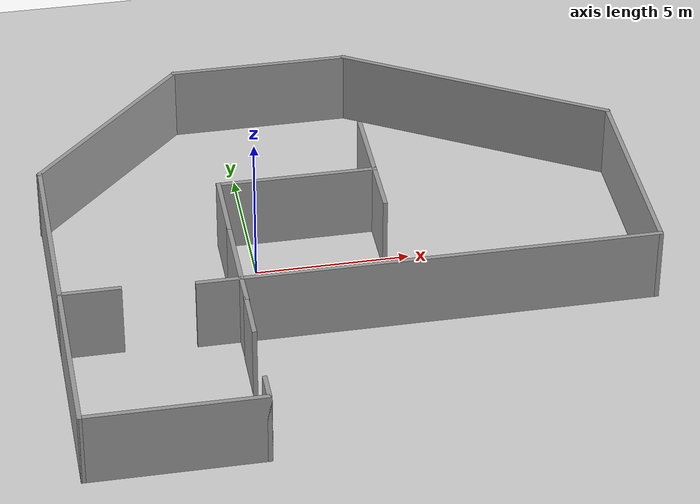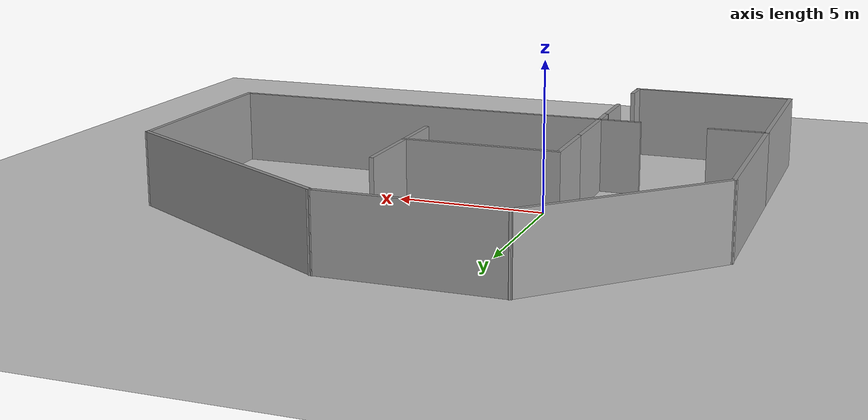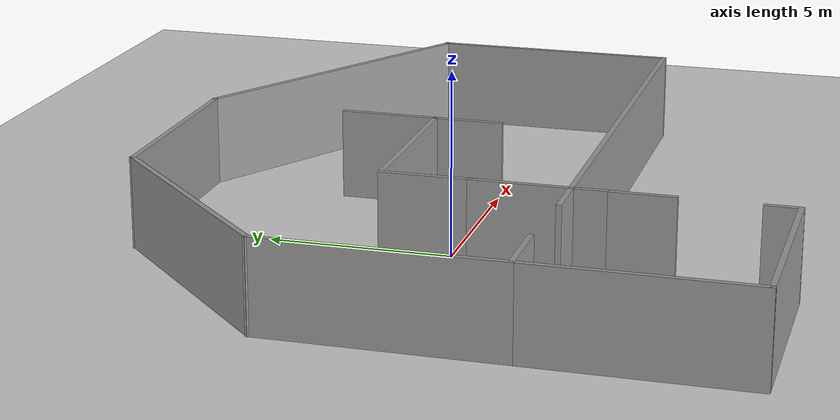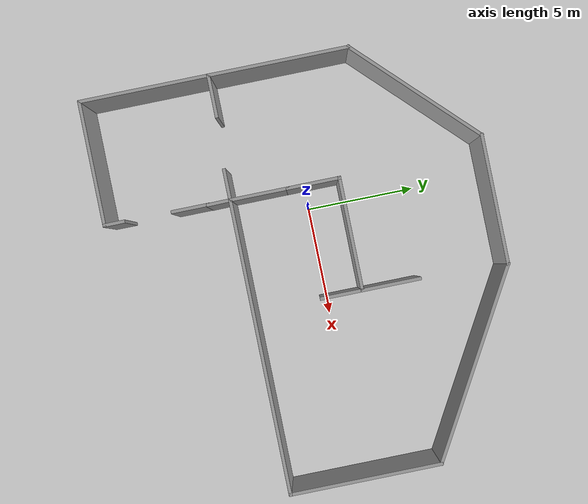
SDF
<sdf version='1.6'>
  <world name='default'>
        <plugin name='ardupilot_sitl_gazebo_plugin' filename='libardupilot_sitl_gazebo_plugin_rover.so'>
      <UAV_MODEL>rover</UAV_MODEL>
    </plugin>
    <light name='sun' type='directional'>
      <cast_shadows>1</cast_shadows>
      <pose frame=''>0 0 10 0 -0 0</pose>
      <diffuse>0.8 0.8 0.8 1</diffuse>
      <specular>0.2 0.2 0.2 1</specular>
      <attenuation>
        <range>1000</range>
        <constant>0.9</constant>
        <linear>0.01</linear>
        <quadratic>0.001</quadratic>
      </attenuation>
      <direction>-0.5 0.1 -0.9</direction>
    </light>
    <model name='ground_plane'>
      <static>1</static>
      <link name='link'>
        <collision name='collision'>
          <geometry>
            <plane>
              <normal>0 0 1</normal>
              <size>100 100</size>
            </plane>
          </geometry>
          <surface>
            <friction>
              <ode>
                <mu>100</mu>
                <mu2>50</mu2>
              </ode>
              <torsional>
                <ode/>
              </torsional>
            </friction>
            <contact>
              <ode/>
            </contact>
            <bounce/>
          </surface>
          <max_contacts>10</max_contacts>
        </collision>
        <visual name='visual'>
          <cast_shadows>0</cast_shadows>
          <geometry>
            <plane>
              <normal>0 0 1</normal>
              <size>100 100</size>
            </plane>
          </geometry>
          <material>
            <script>
              <uri>file://media/materials/scripts/gazebo.material</uri>
              <name>Gazebo/Grey</name>
            </script>
          </material>
        </visual>
        <self_collide>0</self_collide>
        <kinematic>0</kinematic>
      </link>
    </model>
    <gravity>0 0 -9.8</gravity>
    <magnetic_field>6e-06 2.3e-05 -4.2e-05</magnetic_field>
    <atmosphere type='adiabatic'/>
    <physics name='default_physics' default='0' type='ode'>
      <max_step_size>0.001</max_step_size>
      <real_time_factor>1</real_time_factor>
      <real_time_update_rate>1000</real_time_update_rate>
    </physics>
    <scene>
      <ambient>0.4 0.4 0.4 1</ambient>
      <background>0.7 0.7 0.7 1</background>
      <shadows>1</shadows>
    </scene>
    <spherical_coordinates>
      <surface_model>EARTH_WGS84</surface_model>
      <latitude_deg>0</latitude_deg>
      <longitude_deg>0</longitude_deg>
      <elevation>0</elevation>
      <heading_deg>0</heading_deg>
    </spherical_coordinates>
    <model name='weird_building'>
      <pose frame=''>2.9143 -0.409696 0 0 -0 0</pose>
      <link name='Wall_0'>
        <collision name='Wall_0_Collision'>
          <geometry>
            <box>
              <size>2.75 0.15 2.5</size>
            </box>
          </geometry>
          <pose frame=''>0 0 1.25 0 -0 0</pose>
          <max_contacts>10</max_contacts>
          <surface>
            <contact>
              <ode/>
            </contact>
            <bounce/>
            <friction>
              <torsional>
                <ode/>
              </torsional>
              <ode/>
            </friction>
          </surface>
        </collision>
        <visual name='Wall_0_Visual'>
          <pose frame=''>0 0 1.25 0 -0 0</pose>
          <geometry>
            <box>
              <size>2.75 0.15 2.5</size>
            </box>
          </geometry>
          <material>
            <script>
              <uri>file://media/materials/scripts/gazebo.material</uri>
              <name>Gazebo/Grey</name>
            </script>
            <ambient>1 1 1 1</ambient>
          </material>
          <meta>
            <layer>0</layer>
          </meta>
        </visual>
        <pose frame=''>-3.8643 -1.6303 0 0 -0 1.5708</pose>
        <self_collide>0</self_collide>
        <kinematic>0</kinematic>
      </link>
      <link name='Wall_10'>
        <collision name='Wall_10_Collision'>
          <geometry>
            <box>
              <size>9.5 0.15 2.5</size>
            </box>
          </geometry>
          <pose frame=''>0 0 1.25 0 -0 0</pose>
          <max_contacts>10</max_contacts>
          <surface>
            <contact>
              <ode/>
            </contact>
            <bounce/>
            <friction>
              <torsional>
                <ode/>
              </torsional>
              <ode/>
            </friction>
          </surface>
        </collision>
        <visual name='Wall_10_Visual'>
          <pose frame=''>0 0 1.25 0 -0 0</pose>
          <geometry>
            <box>
              <size>9.5 0.15 2.5</size>
            </box>
          </geometry>
          <material>
            <script>
              <uri>file://media/materials/scripts/gazebo.material</uri>
              <name>Gazebo/Grey</name>
            </script>
            <ambient>1 1 1 1</ambient>
          </material>
          <meta>
            <layer>0</layer>
          </meta>
        </visual>
        <pose frame=''>5.43704 6.2572 0 0 -0 2.61799</pose>
        <self_collide>0</self_collide>
        <kinematic>0</kinematic>
      </link>
      <link name='Wall_11'>
        <collision name='Wall_11_Collision'>
          <geometry>
            <box>
              <size>6 0.15 2.5</size>
            </box>
          </geometry>
          <pose frame=''>0 0 1.25 0 -0 0</pose>
          <max_contacts>10</max_contacts>
          <surface>
            <contact>
              <ode/>
            </contact>
            <bounce/>
            <friction>
              <torsional>
                <ode/>
              </torsional>
              <ode/>
            </friction>
          </surface>
        </collision>
        <visual name='Wall_11_Visual'>
          <pose frame=''>0 0 1.25 0 -0 0</pose>
          <geometry>
            <box>
              <size>6 0.15 2.5</size>
            </box>
          </geometry>
          <material>
            <script>
              <uri>file://media/materials/scripts/gazebo.material</uri>
              <name>Gazebo/Grey</name>
            </script>
            <ambient>1 1 1 1</ambient>
          </material>
          <meta>
            <layer>0</layer>
          </meta>
        </visual>
        <pose frame=''>-1.53663 8.5947 0 0 -0 3.14159</pose>
        <self_collide>0</self_collide>
        <kinematic>0</kinematic>
      </link>
      <link name='Wall_12'>
        <collision name='Wall_12_Collision'>
          <geometry>
            <box>
              <size>7.25 0.15 2.5</size>
            </box>
          </geometry>
          <pose frame=''>0 0 1.25 0 -0 0</pose>
          <max_contacts>10</max_contacts>
          <surface>
            <contact>
              <ode/>
            </contact>
            <bounce/>
            <friction>
              <torsional>
                <ode/>
              </torsional>
              <ode/>
            </friction>
          </surface>
        </collision>
        <visual name='Wall_12_Visual'>
          <pose frame=''>0 0 1.25 0 -0 0</pose>
          <geometry>
            <box>
              <size>7.25 0.15 2.5</size>
            </box>
          </geometry>
          <material>
            <script>
              <uri>file://media/materials/scripts/gazebo.material</uri>
              <name>Gazebo/Grey</name>
            </script>
            <ambient>1 1 1 1</ambient>
          </material>
          <meta>
            <layer>0</layer>
          </meta>
        </visual>
        <pose frame=''>-6.97186 6.08447 0 0 0 -2.35619</pose>
        <self_collide>0</self_collide>
        <kinematic>0</kinematic>
      </link>
      <link name='Wall_15'>
        <collision name='Wall_15_Collision'>
          <geometry>
            <box>
              <size>2.75 0.15 2.5</size>
            </box>
          </geometry>
          <pose frame=''>0 0 1.25 0 -0 0</pose>
          <max_contacts>10</max_contacts>
          <surface>
            <contact>
              <ode/>
            </contact>
            <bounce/>
            <friction>
              <torsional>
                <ode/>
              </torsional>
              <ode/>
            </friction>
          </surface>
        </collision>
        <visual name='Wall_15_Visual'>
          <pose frame=''>0 0 1.25 0 -0 0</pose>
          <geometry>
            <box>
              <size>2.75 0.15 2.5</size>
            </box>
          </geometry>
          <material>
            <script>
              <uri>file://media/materials/scripts/gazebo.material</uri>
              <name>Gazebo/Grey</name>
            </script>
            <ambient>1 1 1 1</ambient>
          </material>
          <meta>
            <layer>0</layer>
          </meta>
        </visual>
        <pose frame=''>1.2357 3.3197 0 0 -0 1.5708</pose>
        <self_collide>0</self_collide>
        <kinematic>0</kinematic>
      </link>
      <link name='Wall_17'>
        <collision name='Wall_17_Collision'>
          <geometry>
            <box>
              <size>6.5 0.15 2.5</size>
            </box>
          </geometry>
          <pose frame=''>0 0 1.25 0 -0 0</pose>
          <max_contacts>10</max_contacts>
          <surface>
            <contact>
              <ode/>
            </contact>
            <bounce/>
            <friction>
              <torsional>
                <ode/>
              </torsional>
              <ode/>
            </friction>
          </surface>
        </collision>
        <visual name='Wall_17_Visual'>
          <pose frame=''>0 0 1.25 0 -0 0</pose>
          <geometry>
            <box>
              <size>6.5 0.15 2.5</size>
            </box>
          </geometry>
          <material>
            <script>
              <uri>file://media/materials/scripts/gazebo.material</uri>
              <name>Gazebo/Grey</name>
            </script>
            <ambient>1 1 1 1</ambient>
          </material>
          <meta>
            <layer>0</layer>
          </meta>
        </visual>
        <pose frame=''>-9.48209 0.399237 0 0 0 -1.5708</pose>
        <self_collide>0</self_collide>
        <kinematic>0</kinematic>
      </link>
      <link name='Wall_19'>
        <collision name='Wall_19_Collision'>
          <geometry>
            <box>
              <size>6 0.15 2.5</size>
            </box>
          </geometry>
          <pose frame=''>0 0 1.25 0 -0 0</pose>
          <max_contacts>10</max_contacts>
          <surface>
            <contact>
              <ode/>
            </contact>
            <bounce/>
            <friction>
              <torsional>
                <ode/>
              </torsional>
              <ode/>
            </friction>
          </surface>
        </collision>
        <visual name='Wall_19_Visual'>
          <pose frame=''>0 0 1.25 0 -0 0</pose>
          <geometry>
            <box>
              <size>6 0.15 2.5</size>
            </box>
          </geometry>
          <material>
            <script>
              <uri>file://media/materials/scripts/gazebo.material</uri>
              <name>Gazebo/Grey</name>
            </script>
            <ambient>1 1 1 1</ambient>
          </material>
          <meta>
            <layer>0</layer>
          </meta>
        </visual>
        <pose frame=''>-9.48209 -5.70076 0 0 0 -1.5708</pose>
        <self_collide>0</self_collide>
        <kinematic>0</kinematic>
      </link>
      <link name='Wall_2'>
        <collision name='Wall_2_Collision'>
          <geometry>
            <box>
              <size>2.5 0.15 2.5</size>
            </box>
          </geometry>
          <pose frame=''>0 0 1.25 0 -0 0</pose>
          <max_contacts>10</max_contacts>
          <surface>
            <contact>
              <ode/>
            </contact>
            <bounce/>
            <friction>
              <torsional>
                <ode/>
              </torsional>
              <ode/>
            </friction>
          </surface>
        </collision>
        <visual name='Wall_2_Visual'>
          <pose frame=''>0 0 1.25 0 -0 0</pose>
          <geometry>
            <box>
              <size>2.5 0.15 2.5</size>
            </box>
          </geometry>
          <material>
            <script>
              <uri>file://media/materials/scripts/gazebo.material</uri>
              <name>Gazebo/Grey</name>
            </script>
            <ambient>1 1 1 1</ambient>
          </material>
          <meta>
            <layer>0</layer>
          </meta>
        </visual>
        <pose frame=''>-3.8643 0.844696 0 0 -0 1.5708</pose>
        <self_collide>0</self_collide>
        <kinematic>0</kinematic>
      </link>
      <link name='Wall_20'>
        <collision name='Wall_20_Collision'>
          <geometry>
            <box>
              <size>5.75 0.15 2.5</size>
            </box>
          </geometry>
          <pose frame=''>0 0 1.25 0 -0 0</pose>
          <max_contacts>10</max_contacts>
          <surface>
            <contact>
              <ode/>
            </contact>
            <bounce/>
            <friction>
              <torsional>
                <ode/>
              </torsional>
              <ode/>
            </friction>
          </surface>
        </collision>
        <visual name='Wall_20_Visual'>
          <pose frame=''>0 0 1.25 0 -0 0</pose>
          <geometry>
            <box>
              <size>5.75 0.15 2.5</size>
            </box>
          </geometry>
          <material>
            <script>
              <uri>file://media/materials/scripts/gazebo.material</uri>
              <name>Gazebo/Grey</name>
            </script>
            <ambient>1 1 1 1</ambient>
          </material>
          <meta>
            <layer>0</layer>
          </meta>
        </visual>
        <pose frame=''>-6.68209 -8.62576 0 0 -0 0</pose>
        <self_collide>0</self_collide>
        <kinematic>0</kinematic>
      </link>
      <link name='Wall_21'>
        <collision name='Wall_21_Collision'>
          <geometry>
            <box>
              <size>1 0.15 2.5</size>
            </box>
          </geometry>
          <pose frame=''>0 0 1.25 0 -0 0</pose>
          <max_contacts>10</max_contacts>
          <surface>
            <contact>
              <ode/>
            </contact>
            <bounce/>
            <friction>
              <torsional>
                <ode/>
              </torsional>
              <ode/>
            </friction>
          </surface>
        </collision>
        <visual name='Wall_21_Visual'>
          <pose frame=''>0 0 1.25 0 -0 0</pose>
          <geometry>
            <box>
              <size>1 0.15 2.5</size>
            </box>
          </geometry>
          <material>
            <script>
              <uri>file://media/materials/scripts/gazebo.material</uri>
              <name>Gazebo/Grey</name>
            </script>
            <ambient>1 1 1 1</ambient>
          </material>
          <meta>
            <layer>0</layer>
          </meta>
        </visual>
        <pose frame=''>-3.88209 -8.20076 0 0 -0 1.5708</pose>
        <self_collide>0</self_collide>
        <kinematic>0</kinematic>
      </link>
      <link name='Wall_23'>
        <collision name='Wall_23_Collision'>
          <geometry>
            <box>
              <size>1.15921 0.15 2.5</size>
            </box>
          </geometry>
          <pose frame=''>0 0 1.25 0 -0 0</pose>
          <max_contacts>10</max_contacts>
          <surface>
            <contact>
              <ode/>
            </contact>
            <bounce/>
            <friction>
              <torsional>
                <ode/>
              </torsional>
              <ode/>
            </friction>
          </surface>
        </collision>
        <visual name='Wall_23_Visual'>
          <pose frame=''>0 0 1.25 0 -0 0</pose>
          <geometry>
            <box>
              <size>1.15921 0.15 2.5</size>
            </box>
          </geometry>
          <material>
            <script>
              <uri>file://media/materials/scripts/gazebo.material</uri>
              <name>Gazebo/Grey</name>
            </script>
            <ambient>1 1 1 1</ambient>
          </material>
          <meta>
            <layer>0</layer>
          </meta>
        </visual>
        <pose frame=''>-3.85669 -3.43468 0 0 0 -1.55572</pose>
        <self_collide>0</self_collide>
        <kinematic>0</kinematic>
      </link>
      <link name='Wall_25'>
        <collision name='Wall_25_Collision'>
          <geometry>
            <box>
              <size>1.5 0.15 2.5</size>
            </box>
          </geometry>
          <pose frame=''>0 0 1.25 0 -0 0</pose>
          <max_contacts>10</max_contacts>
          <surface>
            <contact>
              <ode/>
            </contact>
            <bounce/>
            <friction>
              <torsional>
                <ode/>
              </torsional>
              <ode/>
            </friction>
          </surface>
        </collision>
        <visual name='Wall_25_Visual'>
          <pose frame=''>0 0 1.25 0 -0 0</pose>
          <geometry>
            <box>
              <size>1.5 0.15 2.5</size>
            </box>
          </geometry>
          <material>
            <script>
              <uri>file://media/materials/scripts/gazebo.material</uri>
              <name>Gazebo/Grey</name>
            </script>
            <ambient>1 1 1 1</ambient>
          </material>
          <meta>
            <layer>0</layer>
          </meta>
        </visual>
        <pose frame=''>-4.5393 -2.9303 0 0 -0 3.14159</pose>
        <self_collide>0</self_collide>
        <kinematic>0</kinematic>
      </link>
      <link name='Wall_27'>
        <collision name='Wall_27_Collision'>
          <geometry>
            <box>
              <size>2 0.15 2.5</size>
            </box>
          </geometry>
          <pose frame=''>0 0 1.25 0 -0 0</pose>
          <max_contacts>10</max_contacts>
          <surface>
            <contact>
              <ode/>
            </contact>
            <bounce/>
            <friction>
              <torsional>
                <ode/>
              </torsional>
              <ode/>
            </friction>
          </surface>
        </collision>
        <visual name='Wall_27_Visual'>
          <pose frame=''>0 0 1.25 0 -0 0</pose>
          <geometry>
            <box>
              <size>2 0.15 2.5</size>
            </box>
          </geometry>
          <material>
            <script>
              <uri>file://media/materials/scripts/gazebo.material</uri>
              <name>Gazebo/Grey</name>
            </script>
            <ambient>1 1 1 1</ambient>
          </material>
          <meta>
            <layer>0</layer>
          </meta>
        </visual>
        <pose frame=''>-8.55709 -2.77576 0 0 -0 0</pose>
        <self_collide>0</self_collide>
        <kinematic>0</kinematic>
      </link>
      <link name='Wall_29'>
        <collision name='Wall_29_Collision'>
          <geometry>
            <box>
              <size>1.75 0.15 2.5</size>
            </box>
          </geometry>
          <pose frame=''>0 0 1.25 0 -0 0</pose>
          <max_contacts>10</max_contacts>
          <surface>
            <contact>
              <ode/>
            </contact>
            <bounce/>
            <friction>
              <torsional>
                <ode/>
              </torsional>
              <ode/>
            </friction>
          </surface>
        </collision>
        <visual name='Wall_29_Visual'>
          <pose frame=''>0 0 1.25 0 -0 0</pose>
          <geometry>
            <box>
              <size>1.75 0.15 2.5</size>
            </box>
          </geometry>
          <material>
            <script>
              <uri>file://media/materials/scripts/gazebo.material</uri>
              <name>Gazebo/Grey</name>
            </script>
            <ambient>1 1 1 1</ambient>
          </material>
          <meta>
            <layer>0</layer>
          </meta>
        </visual>
        <pose frame=''>-3.8643 -4.73905 0 0 0 -1.5708</pose>
        <self_collide>0</self_collide>
        <kinematic>0</kinematic>
      </link>
      <link name='Wall_4'>
        <collision name='Wall_4_Collision'>
          <geometry>
            <box>
              <size>5.25 0.15 2.5</size>
            </box>
          </geometry>
          <pose frame=''>0 0 1.25 0 -0 0</pose>
          <max_contacts>10</max_contacts>
          <surface>
            <contact>
              <ode/>
            </contact>
            <bounce/>
            <friction>
              <torsional>
                <ode/>
              </torsional>
              <ode/>
            </friction>
          </surface>
        </collision>
        <visual name='Wall_4_Visual'>
          <pose frame=''>0 0 1.25 0 -0 0</pose>
          <geometry>
            <box>
              <size>5.25 0.15 2.5</size>
            </box>
          </geometry>
          <material>
            <script>
              <uri>file://media/materials/scripts/gazebo.material</uri>
              <name>Gazebo/Grey</name>
            </script>
            <ambient>1 1 1 1</ambient>
          </material>
          <meta>
            <layer>0</layer>
          </meta>
        </visual>
        <pose frame=''>-1.3143 2.0197 0 0 -0 0</pose>
        <self_collide>0</self_collide>
        <kinematic>0</kinematic>
      </link>
      <link name='Wall_5'>
        <collision name='Wall_5_Collision'>
          <geometry>
            <box>
              <size>2 0.15 2.5</size>
            </box>
          </geometry>
          <pose frame=''>0 0 1.25 0 -0 0</pose>
          <max_contacts>10</max_contacts>
          <surface>
            <contact>
              <ode/>
            </contact>
            <bounce/>
            <friction>
              <torsional>
                <ode/>
              </torsional>
              <ode/>
            </friction>
          </surface>
        </collision>
        <visual name='Wall_5_Visual'>
          <pose frame=''>0 0 1.25 0 -0 0</pose>
          <geometry>
            <box>
              <size>2 0.15 2.5</size>
            </box>
          </geometry>
          <material>
            <script>
              <uri>file://media/materials/scripts/gazebo.material</uri>
              <name>Gazebo/Grey</name>
            </script>
            <ambient>1 1 1 1</ambient>
          </material>
          <meta>
            <layer>0</layer>
          </meta>
        </visual>
        <pose frame=''>1.2357 1.0947 0 0 0 -1.5708</pose>
        <self_collide>0</self_collide>
        <kinematic>0</kinematic>
      </link>
      <link name='Wall_7'>
        <collision name='Wall_7_Collision'>
          <geometry>
            <box>
              <size>13.5 0.15 2.5</size>
            </box>
          </geometry>
          <pose frame=''>0 0 1.25 0 -0 0</pose>
          <max_contacts>10</max_contacts>
          <surface>
            <contact>
              <ode/>
            </contact>
            <bounce/>
            <friction>
              <torsional>
                <ode/>
              </torsional>
              <ode/>
            </friction>
          </surface>
        </collision>
        <visual name='Wall_7_Visual'>
          <pose frame=''>0 0 1.25 0 -0 0</pose>
          <geometry>
            <box>
              <size>13.5 0.15 2.5</size>
            </box>
          </geometry>
          <material>
            <script>
              <uri>file://media/materials/scripts/gazebo.material</uri>
              <name>Gazebo/Grey</name>
            </script>
            <ambient>1 1 1 1</ambient>
          </material>
          <meta>
            <layer>0</layer>
          </meta>
        </visual>
        <pose frame=''>2.8107 -2.9303 0 0 -0 0</pose>
        <self_collide>0</self_collide>
        <kinematic>0</kinematic>
      </link>
      <link name='Wall_8'>
        <collision name='Wall_8_Collision'>
          <geometry>
            <box>
              <size>7 0.15 2.5</size>
            </box>
          </geometry>
          <pose frame=''>0 0 1.25 0 -0 0</pose>
          <max_contacts>10</max_contacts>
          <surface>
            <contact>
              <ode/>
            </contact>
            <bounce/>
            <friction>
              <torsional>
                <ode/>
              </torsional>
              <ode/>
            </friction>
          </surface>
        </collision>
        <visual name='Wall_8_Visual'>
          <pose frame=''>0 0 1.25 0 -0 0</pose>
          <geometry>
            <box>
              <size>7 0.15 2.5</size>
            </box>
          </geometry>
          <material>
            <script>
              <uri>file://media/materials/scripts/gazebo.material</uri>
              <name>Gazebo/Grey</name>
            </script>
            <ambient>1 1 1 1</ambient>
          </material>
          <meta>
            <layer>0</layer>
          </meta>
        </visual>
        <pose frame=''>9.4857 0.494696 0 0 -0 1.5708</pose>
        <self_collide>0</self_collide>
        <kinematic>0</kinematic>
      </link>
      <static>1</static>
    </model>
    <gui fullscreen='0'>
      <camera name='user_camera'>
        <pose frame=''>9.24002 -9.28839 25.9816 0 1.13564 2.07219</pose>
        <view_controller>orbit</view_controller>
        <projection_type>perspective</projection_type>
      </camera>
    </gui>

        <!-- Pluggin for settin regions that will detect whether the rover is in it or no -->
	<plugin filename="libSimEventsPlugin.so" name="event_plugin">

	<region>
	    <name>maze_exit</name>
	    <volume>
	      <min>-0.711777 -8.17854 -1</min>
	      <max>1 -6.02775 1</max>
	    </volume>
	 </region>
	 <event>
	    <name>maze_exit_event</name>
	    <type>occupied</type>
	    <region>maze_exit</region>
	    <topic>~/region</topic>
	    <msg_data>100</msg_data>
	  </event>

	  </plugin>

  </world>
</sdf>
